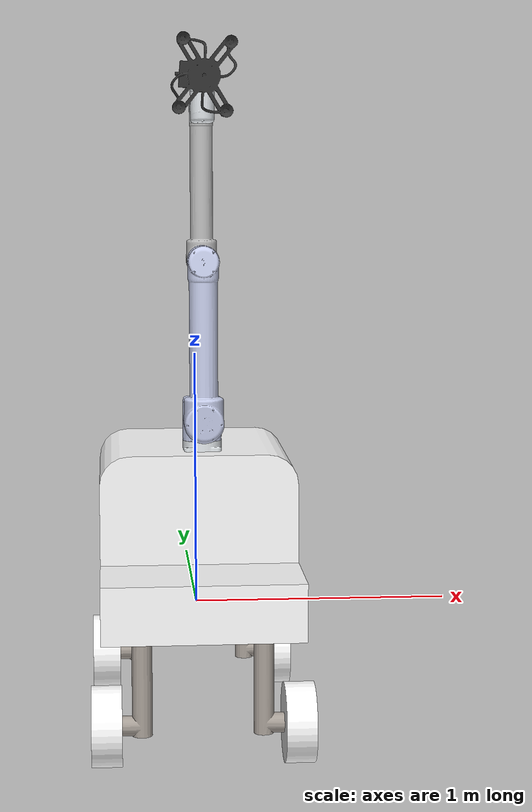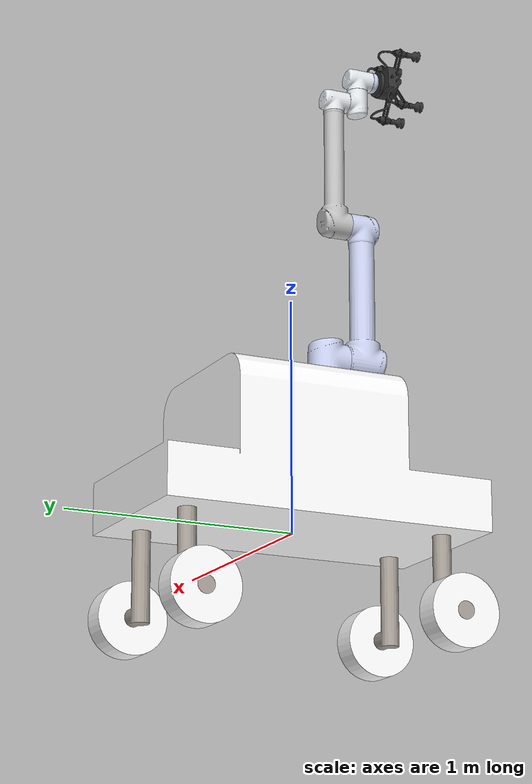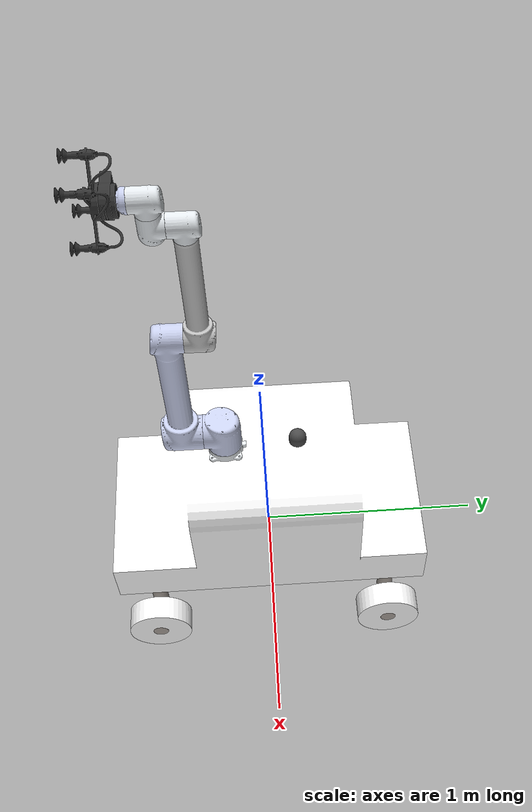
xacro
<?xml version="1.0" ?>
     <robot
     name="car" xmlns:xacro="http://ros.org/wiki/xacro">

   <link name="dummy_link"></link>

   <joint name="dummy_joint" type="fixed">
       <origin rpy="0 0 0" xyz="0 0 0" />
       <parent link="dummy_link"/>
       <child link="car_base"/>
   </joint>
  <link
    name="car_base">
    <inertial>
      <origin
        xyz="8.17360748944015E-06 0.0225033135182252 0.309234562686189"
        rpy="0 0 0" />
      <mass
        value="467.35674418477" />
      <inertia
        ixx="64.8069935901443"
        ixy="0.00212233959160385"
        ixz="0.000377899491888313"
        iyy="42.2474032259228"
        iyz="-1.35082963675344"
        izz="71.07249676203" />
    </inertial>
    <visual>
      <origin
        xyz="0 0 0"
        rpy="0 0 0" />
      <geometry>
        <mesh
          filename="package://car/meshes/car_base.STL" />
      </geometry>
      <material
        name="">
        <color
          rgba="1 1 1 1" />
      </material>
    </visual>
    <collision>
      <origin
        xyz="0 0 0"
        rpy="0 0 0" />
      <geometry>
        <mesh
          filename="package://car/meshes/car_base.STL" />
      </geometry>
    </collision>
  </link>
  <link
    name="front_left_link">
    <inertial>
      <origin
        xyz="-0.0302810536928205 -1.57602927597367E-07 -0.0596388691423392"
        rpy="0 0 0" />
      <mass
        value="22.0857399703979" />
      <inertia
        ixx="0.449028451992821"
        ixy="6.93791933276389E-07"
        ixz="-0.089417115684792"
        iyy="0.511080423522968"
        iyz="1.48767205100447E-06"
        izz="0.0782450703993529" />
    </inertial>
    <visual>
      <origin
        xyz="0 0 0"
        rpy="0 0 0" />
      <geometry>
        <mesh
          filename="package://car/meshes/front_left_link.STL" />
      </geometry>
      <material
        name="">
        <color
          rgba="0.650980392156863 0.619607843137255 0.588235294117647 1" />
      </material>
    </visual>
    <collision>
      <origin
        xyz="0 0 0"
        rpy="0 0 0" />
      <geometry>
        <mesh
          filename="package://car/meshes/front_left_link.STL" />
      </geometry>
    </collision>
  </link>
  <joint
    name="front_left_link_joint"
    type="revolute">
    <origin
      xyz="-0.226923394459318 0.571499952460419 -0.141727116336277"
      rpy="0 0 0" />
    <parent
      link="car_base" />
    <child
      link="front_left_link" />
    <axis
      xyz="0 0 -1" />
    <limit
      lower="-3.14"
      upper="3.14"
      effort="0"
      velocity="0" />
  </joint>
  <link
    name="front_left_wheel_link">
    <inertial>
      <origin
        xyz="1.11022302462516E-16 0 -5.55111512312578E-17"
        rpy="0 0 0" />
      <mass
        value="7.3496247708411" />
      <inertia
        ixx="0.0906847049156055"
        ixy="1.07344434113594E-17"
        ixz="1.23758777359568E-17"
        iyy="0.0533439440680032"
        iyz="-1.21762951284243E-18"
        izz="0.0533439440680032" />
    </inertial>
    <visual>
      <origin
        xyz="0 0 0"
        rpy="0 0 0" />
      <geometry>
        <mesh
          filename="package://car/meshes/front_left_wheel_link.STL" />
      </geometry>
      <material
        name="">
        <color
          rgba="1 1 1 1" />
      </material>
    </visual>
    <collision>
      <origin
        xyz="0 0 0"
        rpy="0 0 0" />
      <geometry>
        <mesh
          filename="package://car/meshes/front_left_wheel_link.STL" />
      </geometry>
    </collision>
  </link>
  <joint
    name="front_left_wheel_joint"
    type="continuous">
    <origin
      xyz="-0.135026605540682 0 -0.201172883663723"
      rpy="0 0 0" />
    <parent
      link="front_left_link" />
    <child
      link="front_left_wheel_link" />
    <axis
      xyz="-1 0 0" />
  </joint>
  <link
    name="front_right_link">
    <inertial>
      <origin
        xyz="0.0302810477941478 1.59129334043051E-07 -0.0596388540396011"
        rpy="0 0 0" />
      <mass
        value="22.0857375944756" />
      <inertia
        ixx="0.449028402346045"
        ixy="6.87962679542649E-07"
        ixz="0.0894171011576155"
        iyy="0.511080374205065"
        iyz="-1.48053144395073E-06"
        izz="0.0782450716846731" />
    </inertial>
    <visual>
      <origin
        xyz="0 0 0"
        rpy="0 0 0" />
      <geometry>
        <mesh
          filename="package://car/meshes/front_right_link.STL" />
      </geometry>
      <material
        name="">
        <color
          rgba="0.650980392156863 0.619607843137255 0.588235294117647 1" />
      </material>
    </visual>
    <collision>
      <origin
        xyz="0 0 0"
        rpy="0 0 0" />
      <geometry>
        <mesh
          filename="package://car/meshes/front_right_link.STL" />
      </geometry>
    </collision>
  </link>
  <joint
    name="front_right_link_joint"
    type="revolute">
    <origin
      xyz="0.226923394459318 0.571500047539581 -0.141727116336277"
      rpy="0 0 0" />
    <parent
      link="car_base" />
    <child
      link="front_right_link" />
    <axis
      xyz="0 0 -1" />
    <limit
      lower="-3.14"
      upper="3.14"
      effort="0"
      velocity="0" />
  </joint>
  <link
    name="front_right_wheel_link">
    <inertial>
      <origin
        xyz="0 1.11022302462516E-16 0"
        rpy="0 0 0" />
      <mass
        value="7.3496247708411" />
      <inertia
        ixx="0.0906847049156055"
        ixy="9.39437570537247E-18"
        ixz="-1.29519688547819E-18"
        iyy="0.0533439440680032"
        iyz="-1.05123654803329E-17"
        izz="0.0533439440680032" />
    </inertial>
    <visual>
      <origin
        xyz="0 0 0"
        rpy="0 0 0" />
      <geometry>
        <mesh
          filename="package://car/meshes/front_right_wheel_link.STL" />
      </geometry>
      <material
        name="">
        <color
          rgba="1 1 1 1" />
      </material>
    </visual>
    <collision>
      <origin
        xyz="0 0 0"
        rpy="0 0 0" />
      <geometry>
        <mesh
          filename="package://car/meshes/front_right_wheel_link.STL" />
      </geometry>
    </collision>
  </link>
  <joint
    name="front_right_wheel_joint"
    type="continuous">
    <origin
      xyz="0.135026605540682 0 -0.201172883663723"
      rpy="0 0 0" />
    <parent
      link="front_right_link" />
    <child
      link="front_right_wheel_link" />
    <axis
      xyz="1 0 0" />
  </joint>
  <link
    name="back_left_link">
    <inertial>
      <origin
        xyz="-0.030281047794148 -1.59129333932029E-07 -0.0596388540396016"
        rpy="0 0 0" />
      <mass
        value="22.0857375944756" />
      <inertia
        ixx="0.449028402346046"
        ixy="6.87962679582659E-07"
        ixz="-0.0894171011576162"
        iyy="0.511080374205066"
        iyz="1.48053144421654E-06"
        izz="0.0782450716846736" />
    </inertial>
    <visual>
      <origin
        xyz="0 0 0"
        rpy="0 0 0" />
      <geometry>
        <mesh
          filename="package://car/meshes/back_left_link.STL" />
      </geometry>
      <material
        name="">
        <color
          rgba="0.650980392156863 0.619607843137255 0.588235294117647 1" />
      </material>
    </visual>
    <collision>
      <origin
        xyz="0 0 0"
        rpy="0 0 0" />
      <geometry>
        <mesh
          filename="package://car/meshes/back_left_link.STL" />
      </geometry>
    </collision>
  </link>
  <joint
    name="back_left_link_joint"
    type="fixed">
    <origin
      xyz="-0.226923394459318 -0.571500047539581 -0.141727116336277"
      rpy="0 0 0" />
    <parent
      link="car_base" />
    <child
      link="back_left_link" />
    <axis
      xyz="0 0 0" />
    <limit
      lower="0"
      upper="0"
      effort="0"
      velocity="0" />
  </joint>
  <link
    name="back_left_wheel_link">
    <inertial>
      <origin
        xyz="-5.55111512312578E-17 0 5.55111512312578E-17"
        rpy="0 0 0" />
      <mass
        value="7.3496247708411" />
      <inertia
        ixx="0.0906847049156055"
        ixy="1.16728879108185E-17"
        ixz="1.46089168868516E-17"
        iyy="0.0533439440680032"
        iyz="3.50935558688986E-18"
        izz="0.0533439440680032" />
    </inertial>
    <visual>
      <origin
        xyz="0 0 0"
        rpy="0 0 0" />
      <geometry>
        <mesh
          filename="package://car/meshes/back_left_wheel_link.STL" />
      </geometry>
      <material
        name="">
        <color
          rgba="1 1 1 1" />
      </material>
    </visual>
    <collision>
      <origin
        xyz="0 0 0"
        rpy="0 0 0" />
      <geometry>
        <mesh
          filename="package://car/meshes/back_left_wheel_link.STL" />
      </geometry>
    </collision>
  </link>
  <joint
    name="back_left_wheel_joint"
    type="continuous">
    <origin
      xyz="-0.135026605540682 0 -0.201172883663723"
      rpy="0 0 0" />
    <parent
      link="back_left_link" />
    <child
      link="back_left_wheel_link" />
    <axis
      xyz="1 0 0" />
  </joint>
  <link
    name="back_right_link">
    <inertial>
      <origin
        xyz="0.0302810536830883 1.60601976939567E-07 -0.0596388620002727"
        rpy="0 0 0" />
      <mass
        value="22.085738575115" />
      <inertia
        ixx="0.449028429484416"
        ixy="6.93622098580479E-07"
        ixz="0.0894171172118593"
        iyy="0.511080405225745"
        iyz="-1.47928401332883E-06"
        izz="0.0782450691149714" />
    </inertial>
    <visual>
      <origin
        xyz="0 0 0"
        rpy="0 0 0" />
      <geometry>
        <mesh
          filename="package://car/meshes/back_right_link.STL" />
      </geometry>
      <material
        name="">
        <color
          rgba="0.650980392156863 0.619607843137255 0.588235294117647 1" />
      </material>
    </visual>
    <collision>
      <origin
        xyz="0 0 0"
        rpy="0 0 0" />
      <geometry>
        <mesh
          filename="package://car/meshes/back_right_link.STL" />
      </geometry>
    </collision>
  </link>
  <joint
    name="back_right_link_joint"
    type="fixed">
    <origin
      xyz="0.226923394459318 -0.571499952460419 -0.141727116336277"
      rpy="0 0 0" />
    <parent
      link="car_base" />
    <child
      link="back_right_link" />
    <axis
      xyz="0 0 0" />
    <limit
      lower="0"
      upper="0"
      effort="0"
      velocity="0" />
  </joint>
  <link
    name="back_right_wheel_link">
    <inertial>
      <origin
        xyz="0 0 0"
        rpy="0 0 0" />
      <mass
        value="7.3496247708411" />
      <inertia
        ixx="0.0906847049156055"
        ixy="4.78658898105718E-18"
        ixz="-5.99241206672733E-17"
        iyy="0.0533439440680032"
        iyz="3.45592186866502E-18"
        izz="0.0533439440680032" />
    </inertial>
    <visual>
      <origin
        xyz="0 0 0"
        rpy="0 0 0" />
      <geometry>
        <mesh
          filename="package://car/meshes/back_right_wheel_link.STL" />
      </geometry>
      <material
        name="">
        <color
          rgba="1 1 1 1" />
      </material>
    </visual>
    <collision>
      <origin
        xyz="0 0 0"
        rpy="0 0 0" />
      <geometry>
        <mesh
          filename="package://car/meshes/back_right_wheel_link.STL" />
      </geometry>
    </collision>
  </link>
  <joint
    name="back_right_wheel_link_joint"
    type="continuous">
    <origin
      xyz="0.135026605540682 0 -0.201172883663723"
      rpy="0 0 0" />
    <parent
      link="back_right_link" />
    <child
      link="back_right_wheel_link" />
    <axis
      xyz="-1 0 0" />
    <limit
      lower="0"
      upper="0"
      effort="0"
      velocity="0" />
  </joint>
  <link
    name="lidar_link">
    <inertial>
      <origin
        xyz="1.61148018215131E-18 0 0.0134984647974684"
        rpy="0 0 0" />
      <mass
        value="0.32505499039827" />
      <inertia
        ixx="0.000188345405804832"
        ixy="-7.12242001146989E-37"
        ixz="-1.26754330848409E-21"
        iyy="0.000188345405804832"
        iyz="-3.71428618776296E-37"
        izz="0.000212769340423724" />
    </inertial>
    <visual>
      <origin
        xyz="0 0 0"
        rpy="0 0 0" />
      <geometry>
        <mesh
          filename="package://car/meshes/lidar_link.STL" />
      </geometry>
      <material
        name="">
        <color
          rgba="0.298039215686275 0.298039215686275 0.298039215686275 1" />
      </material>
    </visual>
    <collision>
      <origin
        xyz="0 0 0"
        rpy="0 0 0" />
      <geometry>
        <mesh
          filename="package://car/meshes/lidar_link.STL" />
      </geometry>
    </collision>
  </link>
  <joint
    name="lidar_joint"
    type="continuous">
    <origin
      xyz="0 0.1524 0.655447"
      rpy="0 0 0" />
    <parent
      link="car_base" />
    <child
      link="lidar_link" />
    <axis
      xyz="0 0 1" />
  </joint>
  <link
    name="ur10">
    <inertial>
      <origin
        xyz="7.22391839388589E-06 -0.000475137384490121 0.000654978643972126"
        rpy="0 0 0" />
      <mass
        value="1.91435201606526" />
      <inertia
        ixx="0.00312084570629235"
        ixy="1.03835097415627E-07"
        ixz="2.20016415043753E-07"
        iyy="0.00309492725703448"
        iyz="5.55031448922631E-07"
        izz="0.00574920281992534" />
    </inertial>
    <visual>
      <origin
        xyz="0 0 0"
        rpy="0 0 0" />
      <geometry>
        <mesh
          filename="package://car/meshes/ur10.STL" />
      </geometry>
      <material
        name="">
        <color
          rgba="0.898039215686275 0.917647058823529 0.929411764705882 1" />
      </material>
    </visual>
    <collision>
      <origin
        xyz="0 0 0"
        rpy="0 0 0" />
      <geometry>
        <mesh
          filename="package://car/meshes/ur10.STL" />
      </geometry>
    </collision>
  </link>
  <joint
    name="ur10_j"
    type="fixed">
    <origin
      xyz="0.0190500000000001 -0.169548672818717 0.660527"
      rpy="0 0 -3.14159265358979" />
    <parent
      link="car_base" />
    <child
      link="ur10" />
    <axis
      xyz="0 0 0" />
  </joint>
  <link
    name="01">
    <inertial>
      <origin
        xyz="3.70761457497565E-05 0.0114409856017593 0.0116125858663346"
        rpy="0 0 0" />
      <mass
        value="8.30725872178856" />
      <inertia
        ixx="0.0290209274545541"
        ixy="7.55947991125206E-06"
        ixz="-8.23047846730788E-06"
        iyy="0.0272249564707654"
        iyz="0.00281819311419462"
        izz="0.0270973700316767" />
    </inertial>
    <visual>
      <origin
        xyz="0 0 0"
        rpy="0 0 0" />
      <geometry>
        <mesh
          filename="package://car/meshes/01.STL" />
      </geometry>
      <material
        name="">
        <color
          rgba="0.792156862745098 0.819607843137255 0.933333333333333 1" />
      </material>
    </visual>
    <collision>
      <origin
        xyz="0 0 0"
        rpy="0 0 0" />
      <geometry>
        <mesh
          filename="package://car/meshes/01.STL" />
      </geometry>
    </collision>
  </link>
  <joint
    name="01j"
    type="continuous">
    <origin
      xyz="0 0 0.11022"
      rpy="-1.57079632679489 0 0" />
    <parent
      link="ur10" />
    <child
      link="01" />
    <axis
      xyz="0 -1 0" />
  </joint>
  <link
    name="12">
    <inertial>
      <origin
        xyz="-2.43403882967536E-05 -0.250894715459623 -0.00563651311083996"
        rpy="0 0 0" />
      <mass
        value="23.5085888172064" />
      <inertia
        ixx="0.256767671586333"
        ixy="3.62397486865205E-06"
        ixz="-9.72859790180711E-07"
        iyy="0.0505710283867853"
        iyz="0.00203684454960158"
        izz="0.255664797791348" />
    </inertial>
    <visual>
      <origin
        xyz="0 0 0"
        rpy="0 0 0" />
      <geometry>
        <mesh
          filename="package://car/meshes/12.STL" />
      </geometry>
      <material
        name="">
        <color
          rgba="0.792156862745098 0.819607843137255 0.933333333333333 1" />
      </material>
    </visual>
    <collision>
      <origin
        xyz="0 0 0"
        rpy="0 0 0" />
      <geometry>
        <mesh
          filename="package://car/meshes/12.STL" />
      </geometry>
    </collision>
  </link>
  <joint
    name="12j"
    type="continuous">
    <origin
      xyz="0.000444178769636271 0 0.175999439502575"
      rpy="0 0 0" />
    <parent
      link="01" />
    <child
      link="12" />
    <axis
      xyz="0.00252374300929709 0 0.999996815355541" />
  </joint>
  <link
    name="23">
    <inertial>
      <origin
        xyz="-0.244390991313135 0.0139095256822855 -0.00101283060327773"
        rpy="0 0 0" />
      <mass
        value="8.43948455874413" />
      <inertia
        ixx="0.00901829529744046"
        ixy="-1.7558314428111E-06"
        ixz="0.000288224540842122"
        iyy="0.131613662619847"
        iyz="-3.49342881195927E-07"
        izz="0.131781826183782" />
    </inertial>
    <visual>
      <origin
        xyz="0 0 0"
        rpy="0 0 0" />
      <geometry>
        <mesh
          filename="package://car/meshes/23.STL" />
      </geometry>
      <material
        name="">
        <color
          rgba="0.752941176470588 0.752941176470588 0.752941176470588 1" />
      </material>
    </visual>
    <collision>
      <origin
        xyz="0 0 0"
        rpy="0 0 0" />
      <geometry>
        <mesh
          filename="package://car/meshes/23.STL" />
      </geometry>
    </collision>
  </link>
  <joint
    name="23j"
    type="continuous">
    <origin
      xyz="-0.014341662691355 -0.616041711362748 -0.127892362765015"
      rpy="3.14159265358979 0 1.57079632679489" />
    <parent
      link="12" />
    <child
      link="23" />
    <axis
      xyz="0 -0.00340256352288005 0.999994211263982" />
  </joint>
  <link
    name="34">
    <inertial>
      <origin
        xyz="0.00758686877396486 0.000158257963222184 0.0081978491457739"
        rpy="0 0 0" />
      <mass
        value="0.728996428249931" />
      <inertia
        ixx="0.000910114210779709"
        ixy="-4.95497562180507E-07"
        ixz="0.000120085217233337"
        iyy="0.000986687923606646"
        iyz="1.62299300726255E-07"
        izz="0.000877255272961533" />
    </inertial>
    <visual>
      <origin
        xyz="0 0 0"
        rpy="0 0 0" />
      <geometry>
        <mesh
          filename="package://car/meshes/34.STL" />
      </geometry>
      <material
        name="">
        <color
          rgba="0.894117647058823 0.913725490196078 0.929411764705882 1" />
      </material>
    </visual>
    <collision>
      <origin
        xyz="0 0 0"
        rpy="0 0 0" />
      <geometry>
        <mesh
          filename="package://car/meshes/34.STL" />
      </geometry>
    </collision>
  </link>
  <joint
    name="34j"
    type="continuous">
    <origin
      xyz="-0.568458717066326 0.0140771361182856 -0.00154359819575967"
      rpy="3.14159265358979 0 0" />
    <parent
      link="23" />
    <child
      link="34" />
    <axis
      xyz="1 0 0" />
  </joint>
  <link
    name="45">
    <inertial>
      <origin
        xyz="-6.86078063953655E-06 -0.00758686562124228 0.0107376301790323"
        rpy="0 0 0" />
      <mass
        value="0.728996237064935" />
      <inertia
        ixx="0.000986687619429367"
        ixy="-1.03152612309003E-09"
        ixz="-4.1735472920365E-07"
        iyy="0.000910112478523505"
        iyz="-0.000120085251276714"
        izz="0.000877253255884768" />
    </inertial>
    <visual>
      <origin
        xyz="0 0 0"
        rpy="0 0 0" />
      <geometry>
        <mesh
          filename="package://car/meshes/45.STL" />
      </geometry>
      <material
        name="">
        <color
          rgba="0.894117647058823 0.913725490196078 0.929411764705882 1" />
      </material>
    </visual>
    <collision>
      <origin
        xyz="0 0 0"
        rpy="0 0 0" />
      <geometry>
        <mesh
          filename="package://car/meshes/45.STL" />
      </geometry>
    </collision>
  </link>
  <joint
    name="45j"
    type="continuous">
    <origin
      xyz="0.00107999999999753 -0.000121644413048495 0.114239846500137"
      rpy="1.5707963267949 0 -1.57079632679489" />
    <parent
      link="34" />
    <child
      link="45" />
    <axis
      xyz="-0.00252374300931106 -0.999996815355541 0" />
  </joint>
  <link
    name="56">
    <inertial>
      <origin
        xyz="-0.000158258378738691 0.00758689090859055 0.0107378376099037"
        rpy="0 0 0" />
      <mass
        value="0.728997478631833" />
      <inertia
        ixx="0.00098668725075454"
        ixy="4.9549159032517E-07"
        ixz="-1.62291043904241E-07"
        iyy="0.00091011249668781"
        iyz="0.000120084923500316"
        izz="0.000877253430656182" />
    </inertial>
    <visual>
      <origin
        xyz="0 0 0"
        rpy="0 0 0" />
      <geometry>
        <mesh
          filename="package://car/meshes/56.STL" />
      </geometry>
      <material
        name="">
        <color
          rgba="0.894117647058823 0.913725490196078 0.929411764705882 1" />
      </material>
    </visual>
    <collision>
      <origin
        xyz="0 0 0"
        rpy="0 0 0" />
      <geometry>
        <mesh
          filename="package://car/meshes/56.STL" />
      </geometry>
    </collision>
  </link>
  <joint
    name="56j"
    type="continuous">
    <origin
      xyz="0.00017035265312812 -0.00108021496349869 0.11678"
      rpy="-1.5707963267949 0 0" />
    <parent
      link="45" />
    <child
      link="56" />
    <axis
      xyz="0 1 0" />
  </joint>
  <link
    name="67">
    <inertial>
      <origin
        xyz="-5.11211491377346E-05 -0.000470150585814899 -0.00309378276926547"
        rpy="0 0 0" />
      <mass
        value="0.430679886408465" />
      <inertia
        ixx="0.000230408193921901"
        ixy="-8.07101792783031E-06"
        ixz="-6.05609775698816E-07"
        iyy="0.00022697322068757"
        iyz="8.63745408192403E-07"
        izz="0.000403298196986367" />
    </inertial>
    <visual>
      <origin
        xyz="0 0 0"
        rpy="0 0 0" />
      <geometry>
        <mesh
          filename="package://car/meshes/67.STL" />
      </geometry>
      <material
        name="">
        <color
          rgba="0.792156862745098 0.819607843137255 0.933333333333333 1" />
      </material>
    </visual>
    <collision>
      <origin
        xyz="0 0 0"
        rpy="0 0 0" />
      <geometry>
        <mesh
          filename="package://car/meshes/67.STL" />
      </geometry>
    </collision>
  </link>
  <joint
    name="67j"
    type="continuous">
    <origin
      xyz="0.000785025467013749 -0.000109109397765872 0.0789120359011379"
      rpy="0 0 0" />
    <parent
      link="56" />
    <child
      link="67" />
    <axis
      xyz="-0.00252374300930457 0 -0.99999681535554" />
  </joint>
  <link
    name="gripper">
    <inertial>
      <origin
        xyz="-0.00710247160346203 0.0303390950483818 0.000488474590246035"
        rpy="0 0 0" />
      <mass
        value="1.34963431952749" />
      <inertia
        ixx="0.00651208089817064"
        ixy="0.000182430404454018"
        ixz="-0.00012186571378861"
        iyy="0.00861283977900375"
        iyz="-1.31090652690102E-05"
        izz="0.0049440363866004" />
    </inertial>
    <visual>
      <origin
        xyz="0 0 0"
        rpy="0 0 0" />
      <geometry>
        <mesh
          filename="package://car/meshes/gripper.STL" />
      </geometry>
      <material
        name="">
        <color
          rgba="0.2 0.2 0.2 1" />
      </material>
    </visual>
    <collision>
      <origin
        xyz="0 0 0"
        rpy="0 0 0" />
      <geometry>
        <mesh
          filename="package://car/meshes/gripper.STL" />
      </geometry>
    </collision>
  </link>
  <joint
    name="7-gripper_joint"
    type="continuous">
    <origin
      xyz="-0.000514480216416438 0.000109109397764318 0.0968676227049757"
      rpy="-1.5707963267949 0 3.14159265358979" />
    <parent
      link="67" />
    <child
      link="gripper" />
    <axis
      xyz="0 0 0" />
  </joint>

  <ros2_control name="GazeboSystem" type="system">
    <hardware>
        <plugin>gazebo_ros2_control/GazeboSystem</plugin>
    </hardware>

    # Velocity Controllers for 2 back wheels

    <joint name="front_left_wheel_joint">
      <command_interface name="velocity">
          <param name="min">-1000.0</param>
          <param name="max">1000.0</param>
      </command_interface>
      <state_interface name="position"/>
      <state_interface name="velocity"/>
  </joint>

  <joint name="front_right_wheel_joint">
    <command_interface name="velocity">
        <param name="min">-1000.0</param>
        <param name="max">1000.0</param>
    </command_interface>
    <state_interface name="position"/>
    <state_interface name="velocity"/>
  </joint>

    <joint name="back_left_wheel_joint">
        <command_interface name="velocity">
            <param name="min">-1000.0</param>
            <param name="max">1000.0</param>
        </command_interface>
        <state_interface name="position"/>
        <state_interface name="velocity"/>
    </joint>

    <joint name="back_right_wheel_link_joint">
      <command_interface name="velocity">
          <param name="min">-1000.0</param>
          <param name="max">1000.0</param>
      </command_interface>
      <state_interface name="position"/>
      <state_interface name="velocity"/>
  </joint>

  <!-- Velocity controllers for ur10 -->
  <joint name="01j">
    <command_interface name="velocity">
        <param name="min">-1000.0</param>
        <param name="max">1000.0</param>
    </command_interface>
    <state_interface name="position"/>
    <state_interface name="velocity"/>
</joint>

<joint name="12j">
  <command_interface name="velocity">
      <param name="min">-1000.0</param>
      <param name="max">1000.0</param>
  </command_interface>
  <state_interface name="position"/>
  <state_interface name="velocity"/>
</joint>

<joint name="23j">
  <command_interface name="velocity">
      <param name="min">-1000.0</param>
      <param name="max">1000.0</param>
  </command_interface>
  <state_interface name="position"/>
  <state_interface name="velocity"/>
</joint>

<joint name="34j">
  <command_interface name="velocity">
      <param name="min">-1000.0</param>
      <param name="max">1000.0</param>
  </command_interface>
  <state_interface name="position"/>
  <state_interface name="velocity"/>
</joint>

<joint name="45j">
  <command_interface name="velocity">
      <param name="min">-1000.0</param>
      <param name="max">1000.0</param>
  </command_interface>
  <state_interface name="position"/>
  <state_interface name="velocity"/>
</joint>

<joint name="56j">
  <command_interface name="velocity">
      <param name="min">-1000.0</param>
      <param name="max">1000.0</param>
  </command_interface>
  <state_interface name="position"/>
  <state_interface name="velocity"/>
</joint>

<joint name="67j">
  <command_interface name="velocity">
      <param name="min">-1000.0</param>
      <param name="max">1000.0</param>
  </command_interface>
  <state_interface name="position"/>
  <state_interface name="velocity"/>
</joint>

<joint name="7-gripper_joint">
  <command_interface name="velocity">
      <param name="min">-1000.0</param>
      <param name="max">1000.0</param>
  </command_interface>
  <state_interface name="position"/>
  <state_interface name="velocity"/>
</joint>

   # Position Controller for 2 front wheels
    <joint name="front_right_link_joint">
        <command_interface name="position">
            <param name="min">-3.14</param>
            <param name="max">3.14</param>
        </command_interface>
        <state_interface name="position"/>
        <state_interface name="velocity"/>
    </joint>

    <joint name="front_left_link_joint">
      <command_interface name="position">
          <param name="min">-3.14</param>
          <param name="max">3.14</param>
      </command_interface>
      <state_interface name="position"/>
      <state_interface name="velocity"/>
  </joint>

  <!-- postion control for UR10 arms -->
  <joint name="01j">
    <command_interface name="position">
        <param name="min">-3.14</param>
        <param name="max">3.14</param>
    </command_interface>
    <state_interface name="position"/>
    <state_interface name="velocity"/>
</joint>
<joint name="12j">
  <command_interface name="position">
      <param name="min">-3.14</param>
      <param name="max">3.14</param>
  </command_interface>
  <state_interface name="position"/>
  <state_interface name="velocity"/>
</joint>
<joint name="23j">
  <command_interface name="position">
      <param name="min">-3.14</param>
      <param name="max">3.14</param>
  </command_interface>
  <state_interface name="position"/>
  <state_interface name="velocity"/>
</joint>
<joint name="34j">
  <command_interface name="position">
      <param name="min">-3.14</param>
      <param name="max">3.14</param>
  </command_interface>
  <state_interface name="position"/>
  <state_interface name="velocity"/>
</joint>
<joint name="45j">
  <command_interface name="position">
      <param name="min">-3.14</param>
      <param name="max">3.14</param>
  </command_interface>
  <state_interface name="position"/>
  <state_interface name="velocity"/>
</joint>
<joint name="56j">
  <command_interface name="position">
      <param name="min">-3.14</param>
      <param name="max">3.14</param>
  </command_interface>
  <state_interface name="position"/>
  <state_interface name="velocity"/>
</joint>
<joint name="67j">
  <command_interface name="position">
      <param name="min">-3.14</param>
      <param name="max">3.14</param>
  </command_interface>
  <state_interface name="position"/>
  <state_interface name="velocity"/>
</joint>
<joint name="7-gripper_joint">
  <command_interface name="position">
      <param name="min">-3.14</param>
      <param name="max">3.14</param>
  </command_interface>
  <state_interface name="position"/>
  <state_interface name="velocity"/>
</joint>

    </ros2_control>
    <gazebo reference="lidar_link">
      <sensor name="lidar" type="ray">
        <pose>0.0 0.0 0.0 0 0 0</pose>
        <always_on>true</always_on>
        <visualize>true</visualize>
        <update_rate>5</update_rate>
        <ray>
          <scan>
            <horizontal>
              <samples>360</samples>
              <resolution>1.00000</resolution>
              <min_angle>0.000000</min_angle>
              <max_angle>6.280000</max_angle>
            </horizontal>
          </scan>
          <range>
            <min>0.120000</min>
            <max>3.5</max>
            <resolution>0.015000</resolution>
          </range>
          <noise>
            <type>gaussian</type>
            <mean>0.0</mean>
            <stddev>0.01</stddev>
          </noise>
        </ray>
        <plugin name="scan" filename="libgazebo_ros_ray_sensor.so">
          <ros>
            <remapping>~/out:=scan</remapping>
          </ros>
          <output_type>sensor_msgs/LaserScan</output_type>
          <frame_name>lidar_link</frame_name>
        </plugin>
      </sensor>
      </gazebo>

      <gazebo reference="car_base">
        <gravity>true</gravity>
        <sensor name="imu_sensor" type="imu">
          <always_on>true</always_on>
          <update_rate>100</update_rate>
          <visualize>true</visualize>
          <topic>__default_topic__</topic>
          <plugin filename="libgazebo_ros_imu_sensor.so" name="imu_plugin">
            <topicName>imu</topicName>
            <bodyName>car_base</bodyName>
            <updateRateHZ>10.0</updateRateHZ>
            <gaussianNoise>0.0</gaussianNoise>
            <xyzOffset>0 0 0</xyzOffset>
            <rpyOffset>0 0 0</rpyOffset>
            <frameName>car_base</frameName>
            <initialOrientationAsReference>false</initialOrientationAsReference>
          </plugin>
          <pose>0 0 0 0 0 0</pose>
        </sensor>
      </gazebo>

      <gazebo>
        <plugin filename="libodometry_plugin.so" name="odometry_plugin">
          <!-- Name of the link for which the odometry is required -->
          <frame>car_base</frame>
          <!-- Any arbitray name for the world frame -->
          <world_frame>fixed_world</world_frame>
        </plugin>
      </gazebo>

      <gazebo>
        <plugin name='vacuum_gripper' filename='libgazebo_ros_vacuum_gripper.so'>

          <!-- This part can be commented out if not required -->
          <ros>

            <!-- Add a namespace -->

            <namespace>/</namespace>

            <!-- Remapping service and topic names -->
            <remapping>switch:=custom_switch</remapping>
            <remapping>grasping:=custom_grasping</remapping>
          </ros>

          <!-- Link associated with gripper -->
          <link_name>gripper</link_name>

          <!-- Max distance to attract entities -->
          <max_distance>10.0</max_distance>

          <!-- List of entities to be not attracted by the gripper -->
          <fixed>ground_plane</fixed>
          <fixed>wall</fixed>

        </plugin>
      </gazebo>

    <gazebo>
      <plugin filename="libgazebo_ros2_control.so" name="gazebo_ros2_control">
          <parameters>$(find car)/config/control.yaml</parameters>
      </plugin>
  </gazebo>

</robot>
